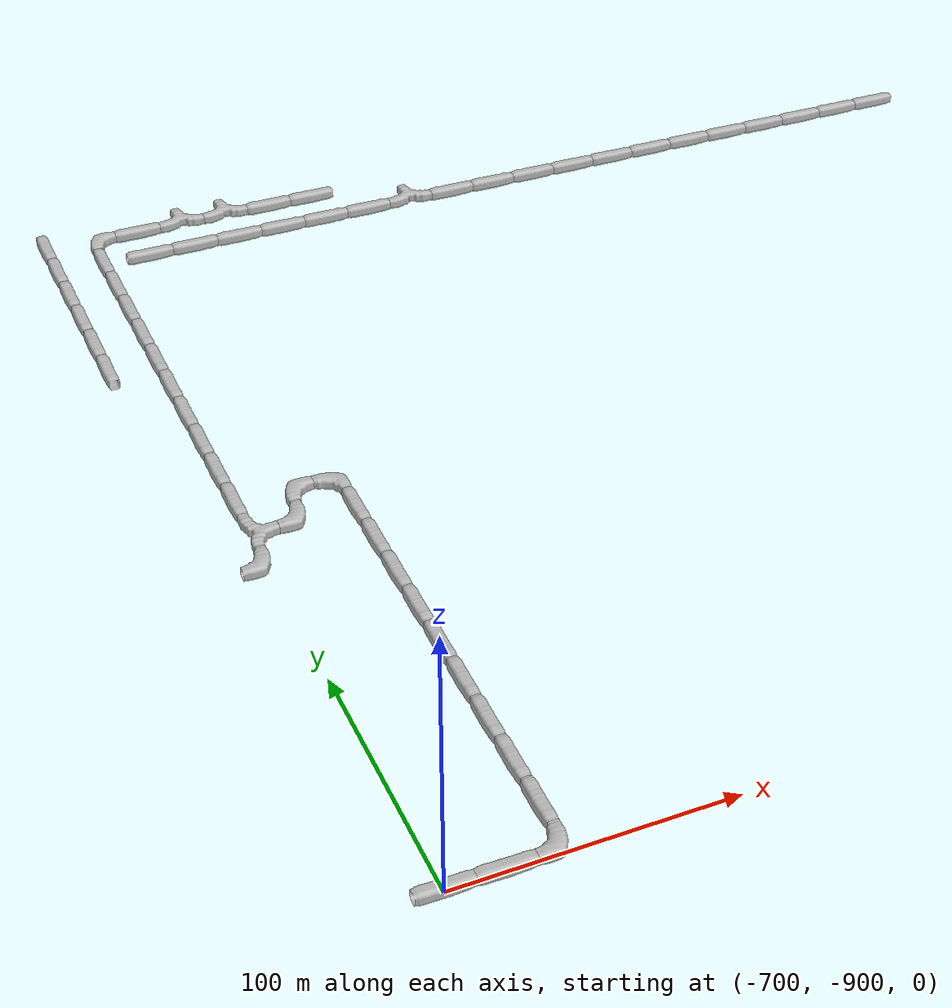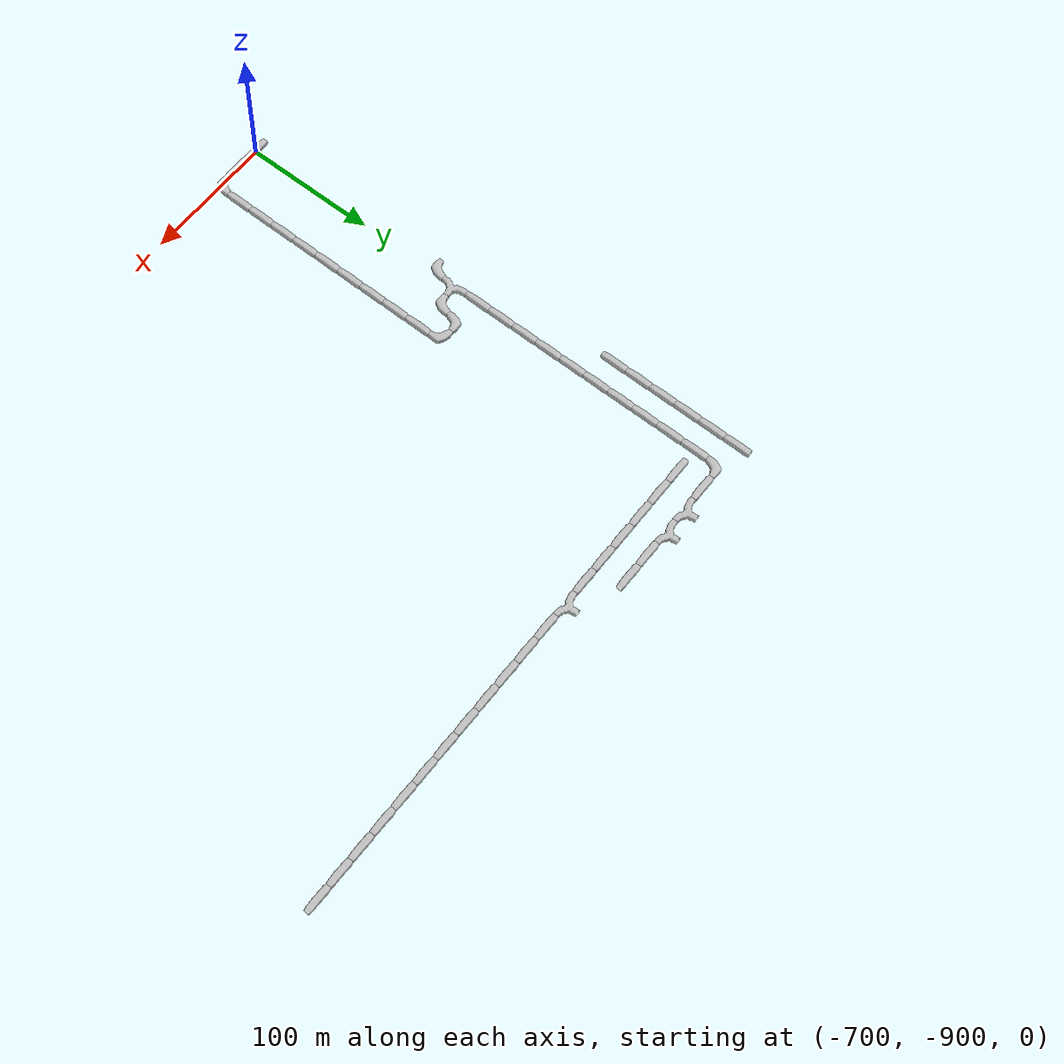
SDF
<sdf version="1.6">
 <world name="cave_32000_64">
  <include>
   <static>true</static>
   <name>cave_-16_-26</name>
   <pose>-320 -520 0 0 0 1.5707963267948966</pose>
   <uri>model://cave_straight_20m</uri>
  </include>
  <include>
   <static>true</static>
   <name>cave_-17_-26</name>
   <pose>-340 -520 0 0 0 1.5707963267948966</pose>
   <uri>model://cave_straight_20m</uri>
  </include>
  <include>
   <static>true</static>
   <name>cave_-18_-26</name>
   <pose>-360 -520 0 0 0 1.5707963267948966</pose>
   <uri>model://cave_straight_20m</uri>
  </include>
  <include>
   <static>true</static>
   <name>cave_-19_-26</name>
   <pose>-380 -520 0 0 0 1.5707963267948966</pose>
   <uri>model://cave_straight_20m</uri>
  </include>
  <include>
   <static>true</static>
   <name>cave_-20_-26</name>
   <pose>-400 -520 0 0 0 1.5707963267948966</pose>
   <uri>model://cave_straight_20m</uri>
  </include>
  <include>
   <static>true</static>
   <name>cave_-21_-26</name>
   <pose>-420 -520 0 0 0 1.5707963267948966</pose>
   <uri>model://cave_straight_20m</uri>
  </include>
  <include>
   <static>true</static>
   <name>cave_-22_-26</name>
   <pose>-440 -520 0 0 0 1.5707963267948966</pose>
   <uri>model://cave_straight_20m</uri>
  </include>
  <include>
   <static>true</static>
   <name>cave_-23_-26</name>
   <pose>-460 -520 0 0 0 1.5707963267948966</pose>
   <uri>model://cave_straight_20m</uri>
  </include>
  <include>
   <static>true</static>
   <name>cave_-24_-26</name>
   <pose>-480 -520 0 0 0 1.5707963267948966</pose>
   <uri>model://cave_straight_20m</uri>
  </include>
  <include>
   <static>true</static>
   <name>cave_-25_-26</name>
   <pose>-500 -520 0 0 0 1.5707963267948966</pose>
   <uri>model://cave_straight_20m</uri>
  </include>
  <include>
   <static>true</static>
   <name>cave_-26_-26</name>
   <pose>-520 -520 0 0 0 1.5707963267948966</pose>
   <uri>model://cave_straight_20m</uri>
  </include>
  <include>
   <static>true</static>
   <name>cave_-27_-26</name>
   <pose>-540 -520 0 0 0 1.5707963267948966</pose>
   <uri>model://cave_straight_20m</uri>
  </include>
  <include>
   <static>true</static>
   <name>cave_-28_-26</name>
   <pose>-560 -520 0 0 0 0.0</pose>
   <uri>model://cave_3way_20m</uri>
  </include>
  <include>
   <static>true</static>
   <name>cave_-29_-26</name>
   <pose>-580 -520 0 0 0 1.5707963267948966</pose>
   <uri>model://cave_straight_20m</uri>
  </include>
  <include>
   <static>true</static>
   <name>cave_-30_-26</name>
   <pose>-600 -520 0 0 0 1.5707963267948966</pose>
   <uri>model://cave_straight_20m</uri>
  </include>
  <include>
   <static>true</static>
   <name>cave_-31_-26</name>
   <pose>-620 -520 0 0 0 1.5707963267948966</pose>
   <uri>model://cave_straight_20m</uri>
  </include>
  <include>
   <static>true</static>
   <name>cave_-32_-26</name>
   <pose>-640 -520 0 0 0 1.5707963267948966</pose>
   <uri>model://cave_straight_20m</uri>
  </include>
  <include>
   <static>true</static>
   <name>cave_-33_-26</name>
   <pose>-660 -520 0 0 0 1.5707963267948966</pose>
   <uri>model://cave_straight_20m</uri>
  </include>
  <include>
   <static>true</static>
   <name>cave_-34_-26</name>
   <pose>-680 -520 0 0 0 1.5707963267948966</pose>
   <uri>model://cave_straight_20m</uri>
  </include>
  <include>
   <static>true</static>
   <name>cave_-33_-25</name>
   <pose>-660 -500 0 0 0 0.0</pose>
   <uri>model://cave_3way_20m</uri>
  </include>
  <include>
   <static>true</static>
   <name>cave_-32_-25</name>
   <pose>-640 -500 0 0 0 0.0</pose>
   <uri>model://cave_3way_20m</uri>
  </include>
  <include>
   <static>true</static>
   <name>cave_-31_-25</name>
   <pose>-620 -500 0 0 0 1.5707963267948966</pose>
   <uri>model://cave_straight_20m</uri>
  </include>
  <include>
   <static>true</static>
   <name>cave_-30_-25</name>
   <pose>-600 -500 0 0 0 1.5707963267948966</pose>
   <uri>model://cave_straight_20m</uri>
  </include>
  <include>
   <static>true</static>
   <name>cave_-34_-25</name>
   <pose>-680 -500 0 0 0 1.5707963267948966</pose>
   <uri>model://cave_straight_20m</uri>
  </include>
  <include>
   <static>true</static>
   <name>cave_-35_-25</name>
   <pose>-700 -500 0 0 0 -1.5707963267948966</pose>
   <uri>model://cave_L_20m</uri>
  </include>
  <include>
   <static>true</static>
   <name>cave_-35_-26</name>
   <pose>-700 -520 0 0 0 0.0</pose>
   <uri>model://cave_straight_20m</uri>
  </include>
  <include>
   <static>true</static>
   <name>cave_-35_-27</name>
   <pose>-700 -540 0 0 0 0.0</pose>
   <uri>model://cave_straight_20m</uri>
  </include>
  <include>
   <static>true</static>
   <name>cave_-35_-28</name>
   <pose>-700 -560 0 0 0 0.0</pose>
   <uri>model://cave_straight_20m</uri>
  </include>
  <include>
   <static>true</static>
   <name>cave_-35_-29</name>
   <pose>-700 -580 0 0 0 0.0</pose>
   <uri>model://cave_straight_20m</uri>
  </include>
  <include>
   <static>true</static>
   <name>cave_-35_-30</name>
   <pose>-700 -600 0 0 0 0.0</pose>
   <uri>model://cave_straight_20m</uri>
  </include>
  <include>
   <static>true</static>
   <name>cave_-35_-31</name>
   <pose>-700 -620 0 0 0 0.0</pose>
   <uri>model://cave_straight_20m</uri>
  </include>
  <include>
   <static>true</static>
   <name>cave_-35_-32</name>
   <pose>-700 -640 0 0 0 0.0</pose>
   <uri>model://cave_straight_20m</uri>
  </include>
  <include>
   <static>true</static>
   <name>cave_-35_-33</name>
   <pose>-700 -660 0 0 0 0.0</pose>
   <uri>model://cave_straight_20m</uri>
  </include>
  <include>
   <static>true</static>
   <name>cave_-35_-34</name>
   <pose>-700 -680 0 0 0 0.0</pose>
   <uri>model://cave_straight_20m</uri>
  </include>
  <include>
   <static>true</static>
   <name>cave_-35_-35</name>
   <pose>-700 -700 0 0 0 0.0</pose>
   <uri>model://cave_straight_20m</uri>
  </include>
  <include>
   <static>true</static>
   <name>cave_-35_-36</name>
   <pose>-700 -720 0 0 0 -1.5707963267948966</pose>
   <uri>model://cave_3way_20m</uri>
  </include>
  <include>
   <static>true</static>
   <name>cave_-34_-36</name>
   <pose>-680 -720 0 0 0 1.5707963267948966</pose>
   <uri>model://cave_L_20m</uri>
  </include>
  <include>
   <static>true</static>
   <name>cave_-34_-35</name>
   <pose>-680 -700 0 0 0 -1.5707963267948966</pose>
   <uri>model://cave_L_20m</uri>
  </include>
  <include>
   <static>true</static>
   <name>cave_-33_-35</name>
   <pose>-660 -700 0 0 0 3.141592653589793</pose>
   <uri>model://cave_L_20m</uri>
  </include>
  <include>
   <static>true</static>
   <name>cave_-33_-36</name>
   <pose>-660 -720 0 0 0 0.0</pose>
   <uri>model://cave_straight_20m</uri>
  </include>
  <include>
   <static>true</static>
   <name>cave_-33_-37</name>
   <pose>-660 -740 0 0 0 0.0</pose>
   <uri>model://cave_straight_20m</uri>
  </include>
  <include>
   <static>true</static>
   <name>cave_-33_-38</name>
   <pose>-660 -760 0 0 0 0.0</pose>
   <uri>model://cave_straight_20m</uri>
  </include>
  <include>
   <static>true</static>
   <name>cave_-33_-39</name>
   <pose>-660 -780 0 0 0 0.0</pose>
   <uri>model://cave_straight_20m</uri>
  </include>
  <include>
   <static>true</static>
   <name>cave_-33_-40</name>
   <pose>-660 -800 0 0 0 0.0</pose>
   <uri>model://cave_straight_20m</uri>
  </include>
  <include>
   <static>true</static>
   <name>cave_-33_-41</name>
   <pose>-660 -820 0 0 0 0.0</pose>
   <uri>model://cave_straight_20m</uri>
  </include>
  <include>
   <static>true</static>
   <name>cave_-33_-42</name>
   <pose>-660 -840 0 0 0 0.0</pose>
   <uri>model://cave_straight_20m</uri>
  </include>
  <include>
   <static>true</static>
   <name>cave_-33_-43</name>
   <pose>-660 -860 0 0 0 0.0</pose>
   <uri>model://cave_straight_20m</uri>
  </include>
  <include>
   <static>true</static>
   <name>cave_-33_-44</name>
   <pose>-660 -880 0 0 0 0.0</pose>
   <uri>model://cave_straight_20m</uri>
  </include>
  <include>
   <static>true</static>
   <name>cave_-33_-45</name>
   <pose>-660 -900 0 0 0 1.5707963267948966</pose>
   <uri>model://cave_L_20m</uri>
  </include>
  <include>
   <static>true</static>
   <name>cave_-34_-45</name>
   <pose>-680 -900 0 0 0 1.5707963267948966</pose>
   <uri>model://cave_straight_20m</uri>
  </include>
  <include>
   <static>true</static>
   <name>cave_-35_-45</name>
   <pose>-700 -900 0 0 0 1.5707963267948966</pose>
   <uri>model://cave_straight_20m</uri>
  </include>
  <include>
   <static>true</static>
   <name>cave_-35_-37</name>
   <pose>-700 -740 0 0 0 1.5707963267948966</pose>
   <uri>model://cave_L_20m</uri>
  </include>
  <include>
   <static>true</static>
   <name>cave_-36_-25</name>
   <pose>-720 -500 0 0 0 0.0</pose>
   <uri>model://cave_straight_20m</uri>
  </include>
  <include>
   <static>true</static>
   <name>cave_-36_-26</name>
   <pose>-720 -520 0 0 0 0.0</pose>
   <uri>model://cave_straight_20m</uri>
  </include>
  <include>
   <static>true</static>
   <name>cave_-36_-27</name>
   <pose>-720 -540 0 0 0 0.0</pose>
   <uri>model://cave_straight_20m</uri>
  </include>
  <include>
   <static>true</static>
   <name>cave_-36_-28</name>
   <pose>-720 -560 0 0 0 0.0</pose>
   <uri>model://cave_straight_20m</uri>
  </include>
  <include>
   <static>true</static>
   <name>cave_-36_-29</name>
   <pose>-720 -580 0 0 0 0.0</pose>
   <uri>model://cave_straight_20m</uri>
  </include>
  <include>
   <static>true</static>
   <name>cave_-36_-30</name>
   <pose>-720 -600 0 0 0 0.0</pose>
   <uri>model://cave_straight_20m</uri>
  </include>
 </world>
</sdf>
